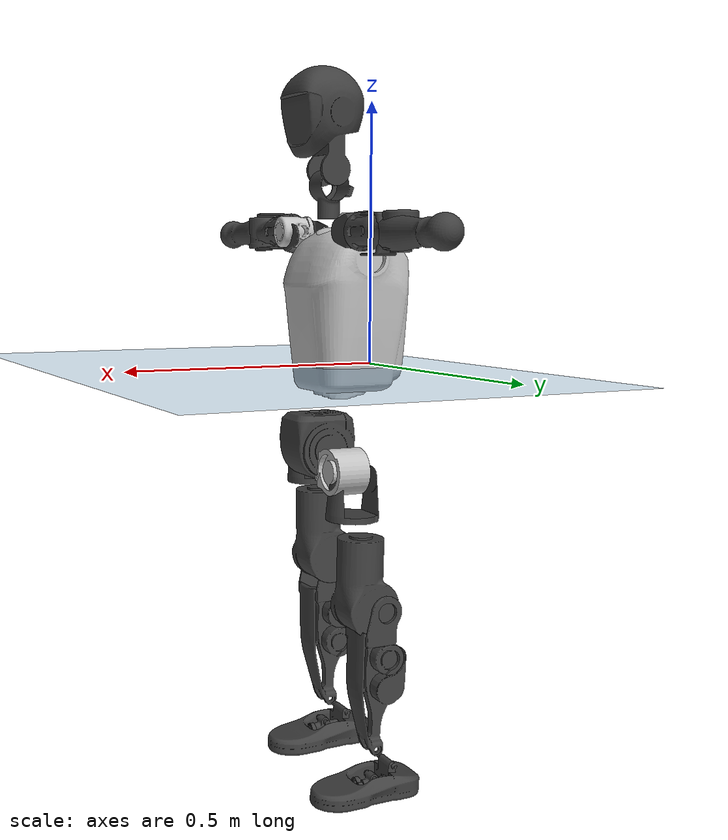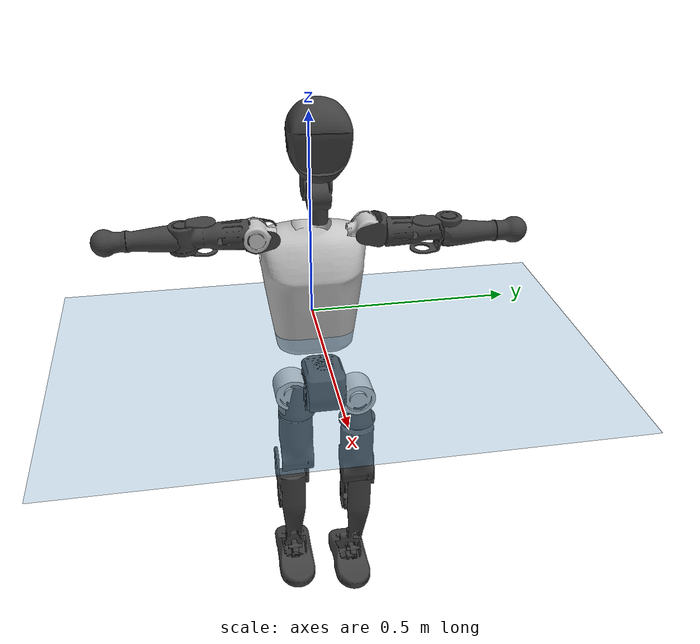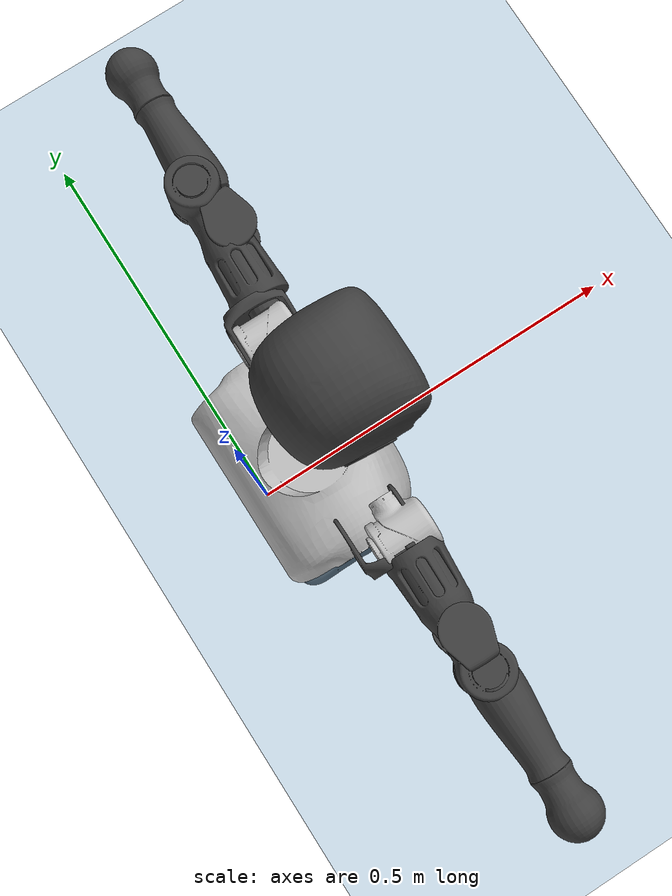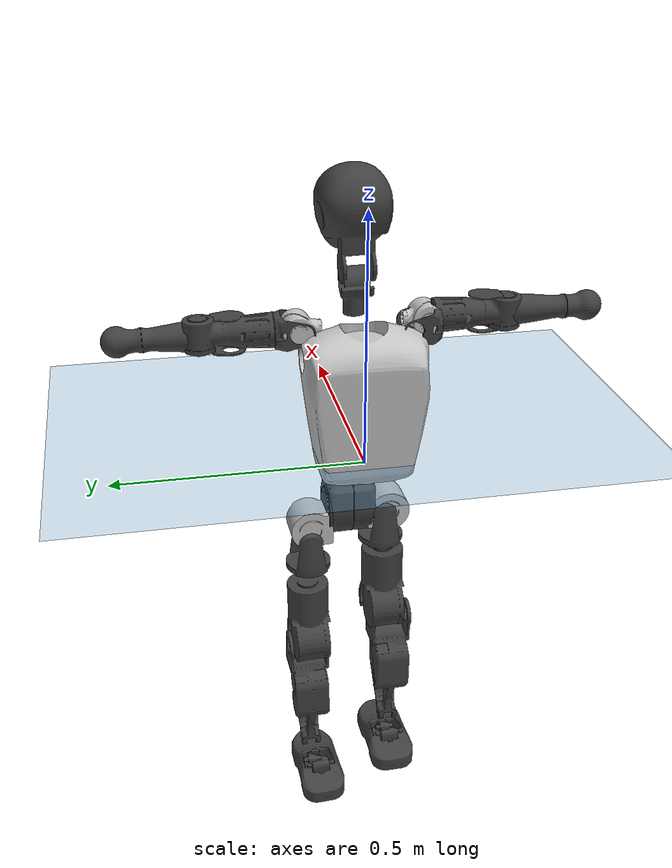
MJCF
<mujoco model="T1">
  <compiler angle="radian" assetdir="assets" balanceinertia="true" inertiafromgeom="false"/>

  <option timestep="0.005" density="1.2" viscosity="2e-05"/>

  <size nkey="1"/>

  <visual>
    <quality shadowsize="8192"/>
    <map shadowclip="0.5"/>
  </visual>

  <default>
    <default class="/">
      <joint armature="0.01" damping="0.01" frictionloss="0.1"/>
      <geom contype="0" conaffinity="0" group="1" solref="-1000 -80"/>
      <site size="0.01 0.005 0.005" group="5"/>
      <general forcelimited="true" biastype="affine" gainprm="25" biasprm="0 -25 -0.6"/>
      <default class="t1">
        <geom rgba="0.25 0.25 0.25 1"/>
        <default class="visual">
          <geom type="mesh" group="2"/>
        </default>
        <default class="collision">
          <geom group="3"/>
        </default>
        <default class="foot">
          <geom size="0.1115 0.05 0.015" type="box" condim="6" group="4" priority="1" solimp="0.015 1 0.015"/>
        </default>
        <default class="reward_collision_sphere">
          <geom group="5" rgba="1 0 0 1"/>
        </default>
      </default>
    </default>
  </default>

  <asset>
    <texture type="skybox" colorspace="auto" name="//unnamed_texture_0" builtin="gradient" rgb1="0.95 0.95 0.95" rgb2="0.95 0.95 0.95" width="100" height="600"/>
    <texture type="2d" colorspace="auto" name="texplane" builtin="checker" rgb1="0.345 0.575 0.748" rgb2="0.345 0.575 0.748" markrgb="1 1 1" width="512" height="512"/>
    <material name="MatPlane" class="/" texture="texplane" texuniform="true" texrepeat="2 2" specular="0.9"/>
    <mesh name="Trunk" class="/" file="Trunk.stl"/>
    <mesh name="H1" class="/" file="H1.stl"/>
    <mesh name="H2" class="/" file="H2.stl"/>
    <mesh name="AL1" class="/" file="AL1.stl"/>
    <mesh name="AL2" class="/" file="AL2.stl"/>
    <mesh name="AL3" class="/" file="AL3.stl"/>
    <mesh name="left_hand_link" class="/" file="left_hand_link.stl"/>
    <mesh name="AR1" class="/" file="AR1.stl"/>
    <mesh name="AR2" class="/" file="AR2.stl"/>
    <mesh name="AR3" class="/" file="AR3.stl"/>
    <mesh name="right_hand_link" class="/" file="right_hand_link.stl"/>
    <mesh name="Waist" class="/" file="Waist.stl"/>
    <mesh name="Hip_Pitch_Left" class="/" file="Hip_Pitch_Left.stl"/>
    <mesh name="Hip_Roll_Left" class="/" file="Hip_Roll_Left.stl"/>
    <mesh name="Hip_Yaw_Left" class="/" file="Hip_Yaw_Left.stl"/>
    <mesh name="Shank_Left" class="/" file="Shank_Left.stl"/>
    <mesh name="Ankle_Cross_Left" class="/" file="Ankle_Cross_Left.stl"/>
    <mesh name="left_foot_link" class="/" file="left_foot_link.stl"/>
    <mesh name="Hip_Pitch_Right" class="/" file="Hip_Pitch_Right.stl"/>
    <mesh name="Hip_Roll_Right" class="/" file="Hip_Roll_Right.stl"/>
    <mesh name="Hip_Yaw_Right" class="/" file="Hip_Yaw_Right.stl"/>
    <mesh name="Shank_Right" class="/" file="Shank_Right.stl"/>
    <mesh name="Ankle_Cross_Right" class="/" file="Ankle_Cross_Right.stl"/>
    <mesh name="right_foot_link" class="/" file="right_foot_link.stl"/>
  </asset>

  <worldbody>
    <geom name="floor" class="/" size="100 100 0.125" type="plane" group="0" material="MatPlane"/>
    <light name="toplight_shadow" class="/" pos="0 0 5" dir="0.0990148 0.0990148 -0.990148" type="directional" ambient="0.04 0.04 0.04" diffuse="0.55 0.55 0.55" specular="0.12 0.12 0.12"/>
    <light name="toplight_fill" class="/" pos="0 0 5" dir="0.0990148 0.0990148 -0.990148" type="directional" castshadow="false" ambient="0.04 0.04 0.04" diffuse="0.3 0.3 0.3" specular="0.08 0.08 0.08"/>
    <body name="trunk" childclass="t1" pos="0.00131313 -0.00731853 -0.0147386" quat="0.999999 -0.000164858 0.00102484 -0.000519016">
      <inertial pos="0.0921513 0.0128631 0.117158" quat="0.997957 -0.00445723 -0.00480224 -0.0635594" mass="20.2124" diaginertia="0.890913 0.012306 0.147644"/>
      <joint name="//unnamed_joint_0" type="free" armature="0" damping="0" frictionloss="0"/>
      <geom name="//unnamed_geom_1" class="visual" rgba="0.76 0.76 0.76 1" mesh="Trunk"/>
      <geom name="//unnamed_geom_2" class="collision" size="0.0854086 0.113878 0.170817" pos="0.0955439 0 0.139804" type="box"/>
      <geom name="//unnamed_geom_3" class="reward_collision_sphere" size="0.13096" pos="0.0955439 0 0.116504"/>
      <geom name="//unnamed_geom_4" class="reward_collision_sphere" size="0.0170817" pos="0.0955439 0.0560071 0"/>
      <geom name="//unnamed_geom_5" class="reward_collision_sphere" size="0.0170817" pos="0.0955439 -0.0560071 0"/>
      <geom name="//unnamed_geom_6" class="reward_collision_sphere" size="0.0170817" pos="0.0955439 0.0705031 0.209707"/>
      <geom name="//unnamed_geom_7" class="reward_collision_sphere" size="0.0170817" pos="0.0955439 -0.0705031 0.209707"/>
      <site name="imu" pos="-0.00304308 -0.0818576 0.0520216" size="0.0113878"/>
      <camera name="track" pos="0 -1.31782 0" quat="0.707107 0.707107 0 0" mode="trackcom"/>
      <camera name="ego_camera" pos="0.194273 0 0.489316" quat="-0.5 -0.5 0.5 0.5"/>
      <body name="H1" pos="0.0924452 0.0119403 0.292188" quat="0.999968 -0.00558144 0.000337635 0.00576394">
        <inertial pos="0.0013358 0.00502892 0.0563603" quat="0.783874 0.0164181 0.0186068 0.620423" mass="0.880108" diaginertia="0.00315184 2.64463e-05 0.000396391"/>
        <joint name="AAHead_yaw" pos="0 0 0" axis="-0.0353524 -0.031465 0.998879" stiffness="0.0126764" range="-1.77935 1.20656" armature="0.0137773" damping="0.0815769" frictionloss="0.188585"/>
        <geom name="//unnamed_geom_8" class="visual" mesh="H1"/>
        <body name="H2" pos="-0.00140745 -0.00523841 0.0917106" quat="0.999954 -0.00919535 -0.00193549 -0.00215936">
          <inertial pos="0.0229773 -0.0129482 0.100236" quat="0.976708 0.140224 -0.117008 -0.112638" mass="0.894566" diaginertia="0.0198168 0.000217578 0.00375212"/>
          <joint name="Head_pitch" pos="0 0 0" axis="0.0599032 -0.99736 -0.0410325" stiffness="0.0654015" range="-1.3788 0.279835" armature="0.00937898" damping="0" frictionloss="0.0910946"/>
          <geom name="//unnamed_geom_9" class="visual" mesh="H2"/>
          <geom name="//unnamed_geom_10" class="collision" size="0.0911025" pos="0.015924 0 0.128154"/>
          <geom name="//unnamed_geom_11" class="reward_collision_sphere" size="0.10249" pos="0.031848 0 0.116504"/>
        </body>
      </body>
      <body name="AL1" pos="0.0919851 0.0770355 0.268644" quat="0.999997 0.00123593 0.0022024 -0.000555836">
        <inertial pos="-0.0102952 0.0420307 -0.000979246" quat="0.545515 0.440232 -0.541661 0.463911" mass="0.86376" diaginertia="0.0188485 0.000193369 0.000784734"/>
        <joint name="Left_Shoulder_Pitch" pos="0 0 0" axis="-0.0603227 0.99815 -0.00753813" stiffness="0.0606213" range="-3.66073 1.17381" armature="0.0199279" damping="0.0675749" frictionloss="0.17679"/>
        <geom name="//unnamed_geom_12" class="visual" rgba="0.76 0.76 0.76 1" mesh="AL1"/>
        <body name="AL2" pos="0.000298302 0.0359792 -0.0021645" quat="0.999964 -0.00568647 0.00520954 -0.00354926">
          <inertial pos="-0.0124493 0.012933 0.00254123" quat="0.516685 0.514063 -0.505581 0.461697" mass="0.300833" diaginertia="0.00519414 5.53906e-05 0.000417774"/>
          <joint name="Left_Shoulder_Roll" pos="0 0 0" axis="-0.999858 0.014876 -0.0078843" stiffness="0.0363383" range="-1.54977 1.89197" armature="0.00356715" damping="0" frictionloss="0.149207"/>
          <geom name="//unnamed_geom_13" class="visual" mesh="AL2"/>
          <body name="AL3" pos="0.0138859 0.0503863 -0.00207038" quat="0.999966 -0.000521966 0.00196478 -0.00798128">
            <inertial pos="-0.0175649 0.0488834 -0.0116546" quat="0.730476 0.677387 -0.0685491 0.0534099" mass="1.13697" diaginertia="0.11167 0.000918847 0.000954848"/>
            <joint name="Left_Elbow_Pitch" pos="0 0 0" axis="-0.0381619 -0.999086 0.0192401" range="-2.17531 1.9005" armature="0.00312638" damping="0" frictionloss="0.00876255"/>
            <geom name="//unnamed_geom_14" class="visual" mesh="AL3"/>
            <geom name="//unnamed_geom_15" class="collision" size="0.0341634 0.0854086" pos="0 0.0329454 0" quat="0.707105 0.707108 0 0" type="cylinder"/>
            <geom name="//unnamed_geom_16" class="reward_collision_sphere" size="0.0409961"/>
            <body name="left_hand_link" pos="0.0131845 0.0864368 -0.00600403" quat="0.999959 -0.000840181 0.000134592 0.00905727">
              <inertial pos="0.00740869 0.0580005 -0.00449523" quat="0.726856 0.686149 -0.0281304 -0.00945067" mass="0.536605" diaginertia="0.062901 0.000795183 0.000537312"/>
              <joint name="Left_Elbow_Yaw" pos="0 0 0" axis="0.0443611 -0.0658358 0.996844" range="-2.20693 -0.36766" armature="0.0194709" damping="0.0909473" frictionloss="0.0465553"/>
              <geom name="//unnamed_geom_17" class="visual" mesh="left_hand_link"/>
              <geom name="//unnamed_geom_18" class="collision" size="0.0341634 0.0996433" pos="0 0.085658 0" quat="0.707105 0.707108 0 0" type="cylinder"/>
              <geom name="//unnamed_geom_19" class="reward_collision_sphere" size="0.0569391"/>
              <geom name="//unnamed_geom_20" class="reward_collision_sphere" size="0.0398573" pos="0 0.0724798 0"/>
              <geom name="//unnamed_geom_21" class="reward_collision_sphere" size="0.0398573" pos="0 0.141665 0"/>
            </body>
          </body>
        </body>
      </body>
      <body name="AR1" pos="0.0984574 -0.0849019 0.272309" quat="0.999996 -0.000313755 0.00194926 -0.00206615">
        <inertial pos="-0.00310037 -0.0135757 -0.00383976" quat="0.506693 0.529389 -0.479088 0.483203" mass="0.65838" diaginertia="0.0146036 0.000182608 0.000656488"/>
        <joint name="Right_Shoulder_Pitch" pos="0 0 0" axis="-0.0933722 -0.995568 -0.0112444" stiffness="0.0565079" range="-1.22652 2.96118" armature="0.0152717" damping="0" frictionloss="0.21549"/>
        <geom name="//unnamed_geom_22" class="visual" rgba="0.76 0.76 0.76 1" mesh="AR1"/>
        <body name="AR2" pos="-0.0191245 -0.013756 -0.00845268" quat="1 9.81463e-05 -2.90645e-05 8.30875e-05">
          <inertial pos="-0.00841057 -0.0281614 -0.00514142" quat="0.540526 0.451571 -0.519688 0.48357" mass="0.144441" diaginertia="0.00332865 3.85206e-05 0.000314932"/>
          <joint name="Right_Shoulder_Roll" pos="0 0 0" axis="-0.996926 0.0127987 -0.077295" stiffness="0.0764186" range="-1.7937 1.2811" armature="0.0153733" damping="0.0890977" frictionloss="0.0258937"/>
          <geom name="//unnamed_geom_23" class="visual" mesh="AR2"/>
          <body name="AR3" pos="0.0160506 -0.0475919 0.011251" quat="0.999982 0.00207261 0.00243324 -0.00508624">
            <inertial pos="0.00270738 -0.0712398 -0.0032227" quat="0.728353 0.68372 -0.0431655 0.0128639" mass="0.922225" diaginertia="0.0997069 0.00123044 0.00103791"/>
            <joint name="Right_Elbow_Pitch" pos="0 0 0" axis="0.0262914 0.999621 -0.0081016" stiffness="0.0981843" range="-1.97074 2.58865" armature="0.0147412" damping="0.0383584" frictionloss="0.128126"/>
            <geom name="//unnamed_geom_24" class="visual" mesh="AR3"/>
            <geom name="//unnamed_geom_25" class="collision" size="0.0341634 0.0854086" pos="0 -0.0329454 0" quat="0.707105 0.707108 0 0" type="cylinder"/>
            <geom name="//unnamed_geom_26" class="reward_collision_sphere" size="0.0409961"/>
            <body name="right_hand_link" pos="0.00132066 -0.0994552 0.00159968" quat="1 0.000315532 0.000112608 -0.000308">
              <inertial pos="0.00599026 -0.075794 0.0185391" quat="0.688066 0.722971 0.0604456 -0.0149806" mass="0.69341" diaginertia="0.089661 0.00127553 0.000512616"/>
              <joint name="Right_Elbow_Yaw" pos="0 0 0" axis="0.0562247 0.0415457 0.997553" range="-0.203236 2.11631" armature="0.0157804" damping="0" frictionloss="0.145708"/>
              <geom name="//unnamed_geom_27" class="visual" mesh="right_hand_link"/>
              <geom name="//unnamed_geom_28" class="collision" size="0.0341634 0.0996433" pos="0 -0.085658 0" quat="0.707105 0.707108 0 0" type="cylinder"/>
              <geom name="//unnamed_geom_29" class="reward_collision_sphere" size="0.0569391"/>
              <geom name="//unnamed_geom_30" class="reward_collision_sphere" size="0.0398573" pos="0 -0.0724798 0"/>
              <geom name="//unnamed_geom_31" class="reward_collision_sphere" size="0.0398573" pos="0 -0.141665 0"/>
            </body>
          </body>
        </body>
      </body>
      <body name="Waist" pos="0.119333 0.0159988 -0.142419" quat="0.999972 -0.0032864 -0.00112504 0.00664304">
        <inertial pos="-0.0018153 0.0149197 0.00183737" quat="0.98323 -0.00222864 -0.182318 0.0037644" mass="3.86371" diaginertia="0.0735096 0.000810955 0.014209"/>
        <joint name="Waist" pos="0 0 0" axis="-0.00247629 0.0650567 0.997878" range="-1.49542 1.65742" armature="0.00574575" damping="0.0532041" frictionloss="0.214283"/>
        <geom name="//unnamed_geom_32" class="visual" mesh="Waist"/>
        <body name="Hip_Pitch_Left" pos="-0.0103279 0.0871932 -0.0151206" quat="0.99997 0.0047536 -0.00599732 0.0012601">
          <inertial pos="-0.00315795 0.00339081 -0.0195152" quat="0.969085 0.236848 0.0666388 -0.0183671" mass="1.4865" diaginertia="0.0231554 0.000159357 0.00350623"/>
          <joint name="Left_Hip_Pitch" pos="0 0 0" axis="-0.00102574 0.99925 -0.0387025" stiffness="0.0861812" range="-1.67189 1.38814" armature="0.015944" damping="0" frictionloss="0.0558606"/>
          <geom name="//unnamed_geom_33" class="visual" rgba="0.76 0.76 0.76 1" mesh="Hip_Pitch_Left"/>
          <body name="Hip_Roll_Left" pos="-0.0166073 0.0063233 -0.0357687" quat="0.999954 -0.00388085 -0.00881156 0.000407529">
            <inertial pos="0.0190215 0.0154481 -0.0712389" quat="0.687607 0.0750921 0.034747 0.721353" mass="0.484417" diaginertia="0.0194146 0.00015662 0.00111969"/>
            <joint name="Left_Hip_Roll" pos="0 0 0" axis="-0.995418 -0.0528213 -0.0796994" stiffness="0.0211108" range="-1.27958 -0.141027" armature="0.00263427" damping="0" frictionloss="0.144754"/>
            <geom name="//unnamed_geom_34" class="visual" mesh="Hip_Roll_Left"/>
            <geom name="//unnamed_geom_35" class="reward_collision_sphere" size="0.062633"/>
            <body name="Hip_Yaw_Left" pos="-0.0197039 0.00583348 -0.11128" quat="0.999961 -0.00458769 0.00728545 0.00184715">
              <inertial pos="-0.0185915 0.00594378 -0.0921924" quat="0.675698 -0.0392187 -0.0135782 0.736009" mass="3.74481" diaginertia="0.340697 0.00346313 0.00499709"/>
              <joint name="Left_Hip_Yaw" pos="0 0 0" axis="-0.0407325 0.0407762 -0.998338" range="-1.16823 1.36141" armature="0.00802571" damping="0.0440641" frictionloss="0.0490952"/>
              <geom name="//unnamed_geom_36" class="visual" mesh="Hip_Yaw_Left"/>
              <geom name="//unnamed_geom_37" class="collision" size="0.0569391 0.0911025" type="cylinder"/>
              <body name="Shank_Left" pos="-0.0329737 0.00931901 -0.137802" quat="0.999997 -0.00159771 0.00100859 -0.0012087">
                <inertial pos="-0.0250968 0.0164165 -0.150657" quat="0.998815 0.0252097 -0.00828988 0.0407928" mass="2.6225" diaginertia="0.356559 0.00451233 0.00325019"/>
                <joint name="Left_Knee_Pitch" pos="0 0 0" axis="0.000738692 0.99997 -0.00769351" range="-0.246635 2.12523" armature="0.00974322" damping="0.00135317" frictionloss="0.0798605"/>
                <geom name="//unnamed_geom_38" class="visual" mesh="Shank_Left"/>
                <geom name="//unnamed_geom_39" class="collision" size="0.0569391 0.0854086" pos="0 0 -0.139804" type="cylinder"/>
                <geom name="//unnamed_geom_40" class="reward_collision_sphere" size="0.0740208"/>
                <body name="Ankle_Cross_Left" pos="-0.00188029 -0.00117916 -0.343953" quat="0.999982 -0.00408557 -0.0033924 0.00291759">
                  <inertial pos="-0.0202002 -0.00938798 0.00263743" quat="0.454226 0.558318 0.538984 0.437556" mass="0.0953372" diaginertia="0.00028586 4.04651e-06 2.74925e-05"/>
                  <joint name="Left_Ankle_Pitch" pos="0 0 0" axis="0.0201496 0.998441 -0.0520499" range="-0.688043 0.161716" armature="0.00794313" damping="0" frictionloss="0.194388"/>
                  <geom name="//unnamed_geom_41" class="visual" mesh="Ankle_Cross_Left"/>
                  <body name="left_foot_link" pos="0.000173752 -0.0119936 -0.0123902" quat="0.999992 -0.000254254 0.00389246 -0.00103479">
                    <inertial pos="-0.0101603 -0.0152966 -0.00676358" quat="0.0201256 0.668538 0.00471999 0.74339" mass="1.0943" diaginertia="0.0186207 0.000223482 0.00358699"/>
                    <joint name="Left_Ankle_Roll" pos="0 0 0" axis="-0.997933 -0.0319186 -0.055783" range="-0.251038 0.0874346" armature="0.00163108" damping="0" frictionloss="0.0584291"/>
                    <geom name="//unnamed_geom_42" class="visual" mesh="left_foot_link"/>
                    <geom name="left_foot" class="foot" size="0.0800965 0.0572074 0.0225317" pos="0.015924 0 -0.0174756"/>
                    <geom name="//unnamed_geom_44" class="reward_collision_sphere" size="0.0592166" pos="0.015924 0 -0.0174756"/>
                    <geom name="//unnamed_geom_45" class="reward_collision_sphere" size="0.0341634" pos="0.151278 -0.0151549 -0.0174756"/>
                    <geom name="//unnamed_geom_46" class="reward_collision_sphere" size="0.0341634" pos="-0.111468 -0.0151549 -0.0174756"/>
                    <site name="left_foot" class="foot" pos="0.015924 0 -0.0174756" size="0.0113878"/>
                  </body>
                </body>
              </body>
            </body>
          </body>
        </body>
        <body name="Hip_Pitch_Right" pos="-0.0158054 -0.0784662 0.0147239" quat="0.999997 0.00215241 -0.000993416 0.000615065">
          <inertial pos="0.0173619 -0.00251754 -0.0206395" quat="0.967113 -0.249578 -0.00743824 0.0484576" mass="1.94697" diaginertia="0.0219599 0.000213529 0.00308634"/>
          <joint name="Right_Hip_Pitch" pos="0 0 0" axis="-0.00882345 -0.999004 0.0437312" stiffness="0.0569926" range="-1.72622 2.04786" armature="0.000890761" damping="0" frictionloss="0.179461"/>
          <geom name="//unnamed_geom_47" class="visual" rgba="0.76 0.76 0.76 1" mesh="Hip_Pitch_Right"/>
          <body name="Hip_Roll_Right" pos="-0.00661146 0.0121368 -0.0167994" quat="0.999996 0.00291553 5.62921e-05 0.000345442">
            <inertial pos="-0.00269668 0.0177085 -0.0480737" quat="0.676872 0.0280352 -0.0719749 0.732037" mass="0.643914" diaginertia="0.0204347 0.000221793 0.00137444"/>
            <joint name="Right_Hip_Roll" pos="0 0 0" axis="-0.999484 -0.0160644 -0.0278068" stiffness="0.0439741" range="-0.0890425 1.59724" armature="0.0136212" damping="0" frictionloss="0.198705"/>
            <geom name="//unnamed_geom_48" class="visual" mesh="Hip_Roll_Right"/>
            <geom name="//unnamed_geom_49" class="reward_collision_sphere" size="0.062633"/>
            <body name="Hip_Yaw_Right" pos="-0.0156135 -0.00172878 -0.0945359" quat="0.999974 -0.00284504 0.00598232 -0.00271384">
              <inertial pos="-0.0119282 0.0190676 -0.115025" quat="0.746977 -0.0431887 -0.0287311 0.662823" mass="3.36495" diaginertia="0.3392 0.00403798 0.00766647"/>
              <joint name="Right_Hip_Yaw" pos="0 0 0" axis="-0.0509 -0.0367021 -0.998029" range="-0.759655 0.689116" armature="0.0154057" damping="0" frictionloss="0.109037"/>
              <geom name="//unnamed_geom_50" class="visual" mesh="Hip_Yaw_Right"/>
              <geom name="//unnamed_geom_51" class="collision" size="0.0569391 0.0911025" type="cylinder"/>
              <body name="Shank_Right" pos="-0.0231203 -0.0122091 -0.163983" quat="1 0.000233966 -1.55782e-05 2.0629e-05">
                <inertial pos="-0.0124378 0.00221584 -0.13204" quat="0.999789 -0.0161085 -0.0124727 0.00247999" mass="3.30061" diaginertia="0.53508 0.00581642 0.00500346"/>
                <joint name="Right_Knee_Pitch" pos="0 0 0" axis="-0.0033544 -0.999979 0.00559973" stiffness="0.0804267" range="-2.57527 -0.212739" armature="0.0115186" damping="0" frictionloss="0.0907922"/>
                <geom name="//unnamed_geom_52" class="visual" mesh="Shank_Right"/>
                <geom name="//unnamed_geom_53" class="collision" size="0.0569391 0.0854086" pos="0 0 -0.139804" type="cylinder"/>
                <geom name="//unnamed_geom_54" class="reward_collision_sphere" size="0.0740208"/>
                <body name="Ankle_Cross_Right" pos="0.00992893 0.00345338 -0.329841" quat="0.99997 -0.00233618 -0.00735558 -0.000820992">
                  <inertial pos="0.00223184 -0.00328198 0.00823522" quat="0.436739 0.487367 0.563017 0.504722" mass="0.136215" diaginertia="0.000443659 3.12395e-06 3.6013e-05"/>
                  <joint name="Right_Ankle_Pitch" pos="0 0 0" axis="-0.0718658 -0.997009 -0.0284171" stiffness="0.077928" range="-0.630579 0.669304" armature="0.0107083" damping="0.07918" frictionloss="0.200774"/>
                  <geom name="//unnamed_geom_55" class="visual" mesh="Ankle_Cross_Right"/>
                  <body name="right_foot_link" pos="-0.00182816 -0.00204836 -0.0142415" quat="0.999987 -0.00107135 0.0050142 1.97229e-05">
                    <inertial pos="0.0188772 0.0140492 -0.0124679" quat="-0.0194839 0.578003 0.0424048 0.814699" mass="0.987058" diaginertia="0.0305132 0.000324338 0.00608772"/>
                    <joint name="Right_Ankle_Roll" pos="0 0 0" axis="-0.999999 0.0012717 0.000657061" range="-0.28701 0.33557" armature="0.00494211" damping="0" frictionloss="0.0901181"/>
                    <geom name="//unnamed_geom_56" class="visual" mesh="right_foot_link"/>
                    <geom name="right_foot" class="foot" size="0.104332 0.0317166 0.0186476" pos="0.015924 0 -0.0174756"/>
                    <geom name="//unnamed_geom_58" class="reward_collision_sphere" size="0.0455512"/>
                    <geom name="//unnamed_geom_59" class="reward_collision_sphere" size="0.0341634" pos="0.015924 0 -0.0174756"/>
                    <geom name="//unnamed_geom_60" class="reward_collision_sphere" size="0.0341634" pos="0.151278 0.0151549 -0.0174756"/>
                    <geom name="//unnamed_geom_61" class="reward_collision_sphere" size="0.0341634" pos="-0.111468 0.0151549 -0.0174756"/>
                    <site name="right_foot" class="foot" pos="0.015924 0 -0.0174756" size="0.0113878"/>
                  </body>
                </body>
              </body>
            </body>
          </body>
        </body>
      </body>
    </body>
  </worldbody>

  <contact>
    <pair class="/" geom1="floor" geom2="left_foot" name="//unnamed_contact_0"/>
    <pair class="/" geom1="floor" geom2="right_foot" name="//unnamed_contact_1"/>
  </contact>

  <actuator>
    <general name="AAHead_yaw" class="/" joint="AAHead_yaw" forcerange="-3.84665 3.84665" gainprm="24.0668" biasprm="0 -24.0668 -0.90322"/>
    <general name="Head_pitch" class="/" joint="Head_pitch" forcerange="-3.69398 3.69398" gainprm="24.0668" biasprm="0 -24.0668 -0.90322"/>
    <general name="Left_Shoulder_Pitch" class="/" joint="Left_Shoulder_Pitch" forcerange="-28.3911 28.3911" gainprm="24.0668" biasprm="0 -24.0668 -0.90322"/>
    <general name="Left_Shoulder_Roll" class="/" joint="Left_Shoulder_Roll" forcerange="-15.2937 15.2937" gainprm="24.0668" biasprm="0 -24.0668 -0.90322"/>
    <general name="Left_Elbow_Pitch" class="/" joint="Left_Elbow_Pitch" forcerange="-7.30674 7.30674" gainprm="24.0668" biasprm="0 -24.0668 -0.90322"/>
    <general name="Left_Elbow_Yaw" class="/" joint="Left_Elbow_Yaw" forcerange="-30.8694 30.8694" gainprm="24.0668" biasprm="0 -24.0668 -0.90322"/>
    <general name="Right_Shoulder_Pitch" class="/" joint="Right_Shoulder_Pitch" forcerange="-34.5007 34.5007" gainprm="24.0668" biasprm="0 -24.0668 -0.90322"/>
    <general name="Right_Shoulder_Roll" class="/" joint="Right_Shoulder_Roll" forcerange="-23.3901 23.3901" gainprm="24.0668" biasprm="0 -24.0668 -0.90322"/>
    <general name="Right_Elbow_Pitch" class="/" joint="Right_Elbow_Pitch" forcerange="-7.05435 7.05435" gainprm="24.0668" biasprm="0 -24.0668 -0.90322"/>
    <general name="Right_Elbow_Yaw" class="/" joint="Right_Elbow_Yaw" forcerange="-12.4677 12.4677" gainprm="24.0668" biasprm="0 -24.0668 -0.90322"/>
    <general name="Waist" class="/" joint="Waist" forcerange="-44.4319 44.4319" gainprm="24.0668" biasprm="0 -24.0668 -0.90322"/>
    <general name="Left_Hip_Pitch" class="/" joint="Left_Hip_Pitch" forcerange="-70.0196 70.0196" gainprm="24.0668" biasprm="0 -24.0668 -0.90322"/>
    <general name="Left_Hip_Roll" class="/" joint="Left_Hip_Roll" forcerange="-12.7517 12.7517" gainprm="24.0668" biasprm="0 -24.0668 -0.90322"/>
    <general name="Left_Hip_Yaw" class="/" joint="Left_Hip_Yaw" forcerange="-58.3414 58.3414" gainprm="24.0668" biasprm="0 -24.0668 -0.90322"/>
    <general name="Left_Knee_Pitch" class="/" joint="Left_Knee_Pitch" forcerange="-30.091 30.091" gainprm="24.0668" biasprm="0 -24.0668 -0.90322"/>
    <general name="Left_Ankle_Pitch" class="/" joint="Left_Ankle_Pitch" forcerange="-39.7761 39.7761" gainprm="24.0668" biasprm="0 -24.0668 -0.90322"/>
    <general name="Left_Ankle_Roll" class="/" joint="Left_Ankle_Roll" forcerange="-20.304 20.304" gainprm="24.0668" biasprm="0 -24.0668 -0.90322"/>
    <general name="Right_Hip_Pitch" class="/" joint="Right_Hip_Pitch" forcerange="-48.9869 48.9869" gainprm="24.0668" biasprm="0 -24.0668 -0.90322"/>
    <general name="Right_Hip_Roll" class="/" joint="Right_Hip_Roll" forcerange="-49.9678 49.9678" gainprm="24.0668" biasprm="0 -24.0668 -0.90322"/>
    <general name="Right_Hip_Yaw" class="/" joint="Right_Hip_Yaw" forcerange="-49.9267 49.9267" gainprm="24.0668" biasprm="0 -24.0668 -0.90322"/>
    <general name="Right_Knee_Pitch" class="/" joint="Right_Knee_Pitch" forcerange="-27.5071 27.5071" gainprm="24.0668" biasprm="0 -24.0668 -0.90322"/>
    <general name="Right_Ankle_Pitch" class="/" joint="Right_Ankle_Pitch" forcerange="-11.8804 11.8804" gainprm="24.0668" biasprm="0 -24.0668 -0.90322"/>
    <general name="Right_Ankle_Roll" class="/" joint="Right_Ankle_Roll" forcerange="-28.3331 28.3331" gainprm="24.0668" biasprm="0 -24.0668 -0.90322"/>
  </actuator>

  <sensor>
    <gyro site="imu" name="imu_angular_velocity"/>
    <velocimeter site="imu" name="imu_linear_velocity"/>
    <framelinvel objtype="site" objname="left_foot" name="left_foot_global_linear_velocity"/>
    <framelinvel objtype="site" objname="right_foot" name="right_foot_global_linear_velocity"/>
  </sensor>

  <keyframe>
    <key name="home" qpos="0 0 0.6385 1 0 0 0 0 0 0 1.4 0 -0.4 0 -1.4 0 0.4 0 -0.4 0 0 0.8 -0.4 0 0.4 0 0 -0.8 0.4 0"/>
  </keyframe>
</mujoco>
